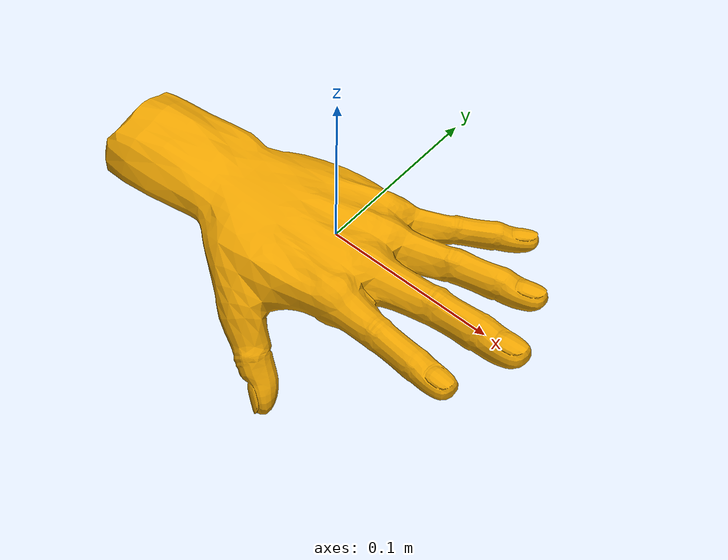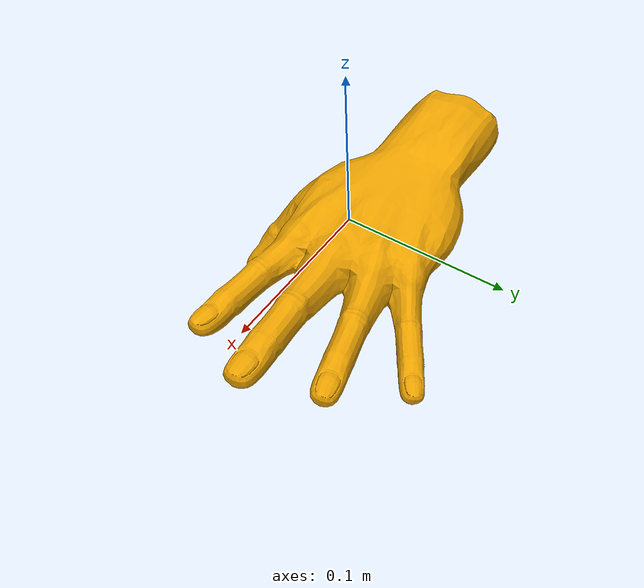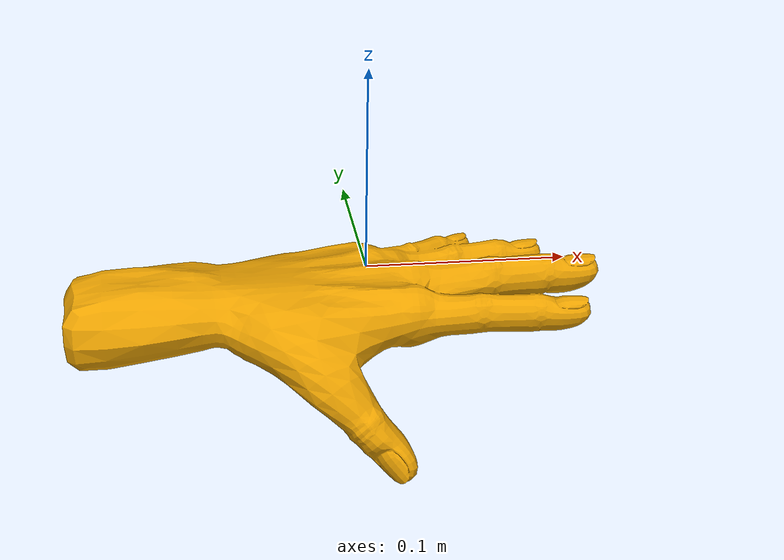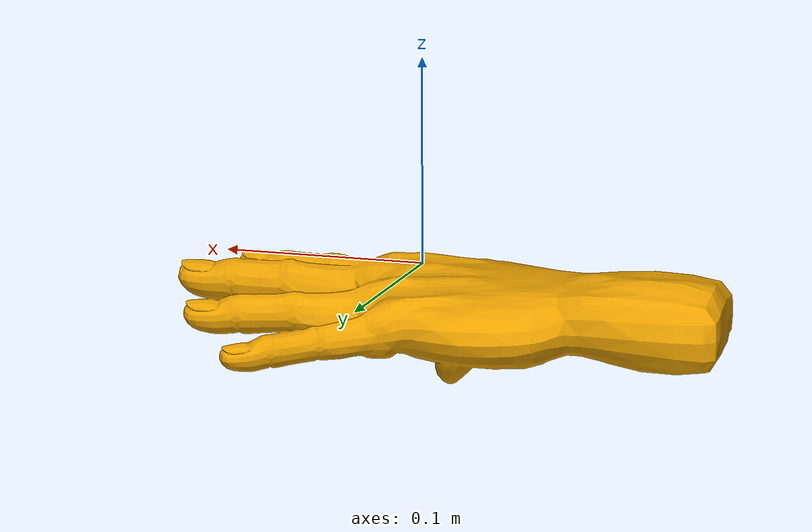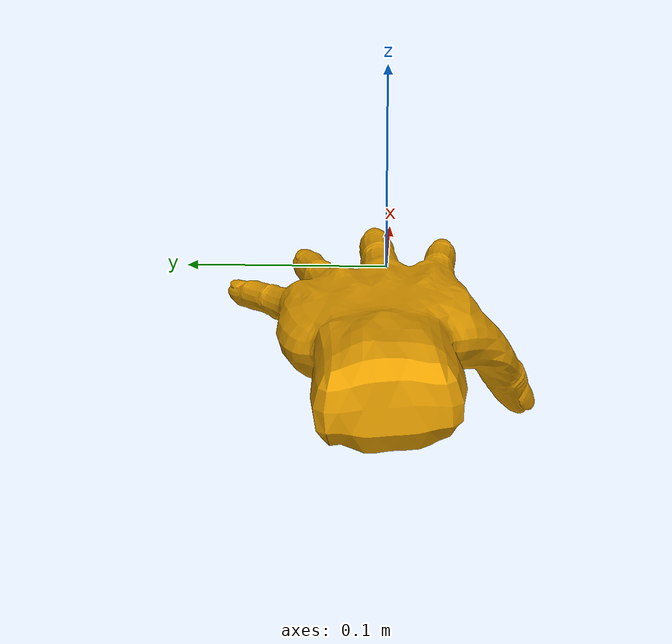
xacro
<?xml version="1.0"?>

<robot name="hand_left">
  <link name="base_link">
    <inertial>
      <origin xyz="0.0 0.0 0.0" />
      <mass value="1.0" />
      <inertia  ixx="1.0" ixy="0.0"  ixz="0.0"  iyy="1.0"  iyz="0.0"  izz="1.0" />
    </inertial>
    <visual>
      <origin xyz="0.0 0.0 0.0"/>
      <geometry>
        <mesh filename="package://trajectory_reshaping_world_visualizer/resources/realistic_hand/realistic_hand_left.dae"/>
      </geometry>
    </visual>
  </link>

  <gazebo reference="base_link">
	<turnGravityOff>true</turnGravityOff>
  </gazebo>
</robot>
